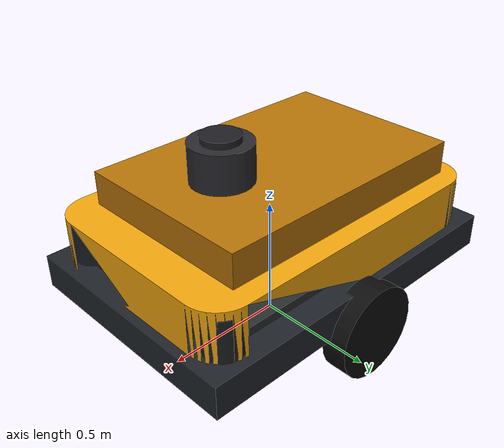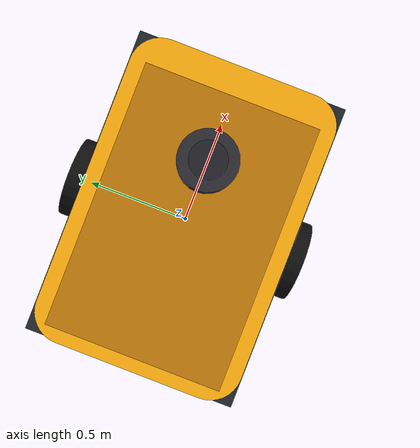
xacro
<?xml version="1.0"?>
<!-- Reduced uniformly by 10% for fleet clearance; collision outline 1.4318181 x 1.125 m. -->
<robot xmlns:xacro="http://www.ros.org/wiki/xacro" name="light_diff_amr">
  <xacro:arg name="robot_name" default="light_1"/>
  <xacro:arg name="controllers_file" default=""/>
  <xacro:include filename="$(find hetero_fleet_description)/urdf/common.xacro"/>
  <xacro:property name="controllers_file" value="$(arg controllers_file)"/>
  <xacro:property name="robot_name" value="$(arg robot_name)"/>
  <xacro:property name="s" value="1.704545454510"/>
  <xacro:property name="base_length" value="${0.80 * s}"/>
  <xacro:property name="base_width" value="${0.54 * s}"/>
  <xacro:property name="base_height" value="${0.22 * s}"/>
  <xacro:property name="wheel_radius" value="${0.11 * s}"/>
  <xacro:property name="wheel_width" value="${0.060 * s}"/>

  <link name="base_footprint"/>
  <link name="base_link">
    <inertial><origin xyz="${-0.06 * s} 0 0"/><mass value="${24.0 * s**3}"/><inertia ixx="${0.58 * s**5}" ixy="0" ixz="0" iyy="${0.92 * s**5}" iyz="0" izz="${1.20 * s**5}"/></inertial>
    <visual><origin xyz="0 0 0"/><geometry><mesh filename="package://hetero_fleet_description/meshes/light_shell.stl" scale="${s} ${s} ${s}"/></geometry><material name="yellow"><color rgba="0.95 0.65 0.05 1"/></material></visual>
    <collision><origin xyz="0 0 ${base_height / 2}"/><geometry><box size="${base_length} ${base_width} ${base_height}"/></geometry></collision>
  </link>
  <joint name="base_footprint_joint" type="fixed"><parent link="base_footprint"/><child link="base_link"/><origin xyz="0 0 ${wheel_radius}"/></joint>
  <link name="underbody_link"><visual><origin xyz="0 0 ${0.055 * s}"/><geometry><box size="${0.72 * s} ${0.46 * s} ${0.11 * s}"/></geometry><material name="underbody"><color rgba="0.16 0.17 0.18 1"/></material></visual><collision><origin xyz="0 0 ${0.055 * s}"/><geometry><box size="${0.72 * s} ${0.46 * s} ${0.11 * s}"/></geometry></collision></link>
  <joint name="underbody_joint" type="fixed"><parent link="base_link"/><child link="underbody_link"/><origin xyz="0 0 ${0.01 * s}"/></joint>
  <link name="bumper_link"><visual><origin xyz="0 0 ${0.04 * s}"/><geometry><box size="${0.84 * s} ${0.58 * s} ${0.08 * s}"/></geometry><material name="bumper"><color rgba="0.12 0.14 0.16 1"/></material></visual><collision><origin xyz="0 0 ${0.04 * s}"/><geometry><box size="${0.84 * s} ${0.58 * s} ${0.08 * s}"/></geometry></collision></link>
  <joint name="bumper_joint" type="fixed"><parent link="base_link"/><child link="bumper_link"/><origin xyz="0 0 ${0.02 * s}"/></joint>
  <link name="top_cover_link"><visual><origin xyz="0 0 ${0.04 * s}"/><geometry><box size="${0.66 * s} ${0.44 * s} ${0.08 * s}"/></geometry><material name="top_cover"><color rgba="0.72 0.45 0.03 1"/></material></visual><collision><origin xyz="0 0 ${0.04 * s}"/><geometry><box size="${0.66 * s} ${0.44 * s} ${0.08 * s}"/></geometry></collision></link>
  <joint name="top_cover_joint" type="fixed"><parent link="base_link"/><child link="top_cover_link"/><origin xyz="${-0.02 * s} 0 ${base_height}"/></joint>

  <link name="front_left_corner_guard"><visual><origin xyz="0 0 ${0.10 * s}"/><geometry><cylinder radius="${0.045 * s}" length="${0.20 * s}"/></geometry><material name="guard"><color rgba="0.10 0.11 0.12 1"/></material></visual><collision><origin xyz="0 0 ${0.10 * s}"/><geometry><cylinder radius="${0.045 * s}" length="${0.20 * s}"/></geometry></collision></link>
  <joint name="front_left_corner_guard_joint" type="fixed"><parent link="base_link"/><child link="front_left_corner_guard"/><origin xyz="${0.34 * s} ${0.22 * s} 0"/></joint>
  <link name="front_right_corner_guard"><visual><origin xyz="0 0 ${0.10 * s}"/><geometry><cylinder radius="${0.045 * s}" length="${0.20 * s}"/></geometry><material name="guard"><color rgba="0.10 0.11 0.12 1"/></material></visual><collision><origin xyz="0 0 ${0.10 * s}"/><geometry><cylinder radius="${0.045 * s}" length="${0.20 * s}"/></geometry></collision></link>
  <joint name="front_right_corner_guard_joint" type="fixed"><parent link="base_link"/><child link="front_right_corner_guard"/><origin xyz="${0.34 * s} ${-0.22 * s} 0"/></joint>
  <link name="rear_left_corner_guard"><visual><origin xyz="0 0 ${0.10 * s}"/><geometry><cylinder radius="${0.045 * s}" length="${0.20 * s}"/></geometry><material name="guard"><color rgba="0.10 0.11 0.12 1"/></material></visual><collision><origin xyz="0 0 ${0.10 * s}"/><geometry><cylinder radius="${0.045 * s}" length="${0.20 * s}"/></geometry></collision></link>
  <joint name="rear_left_corner_guard_joint" type="fixed"><parent link="base_link"/><child link="rear_left_corner_guard"/><origin xyz="${-0.34 * s} ${0.22 * s} 0"/></joint>
  <link name="rear_right_corner_guard"><visual><origin xyz="0 0 ${0.10 * s}"/><geometry><cylinder radius="${0.045 * s}" length="${0.20 * s}"/></geometry><material name="guard"><color rgba="0.10 0.11 0.12 1"/></material></visual><collision><origin xyz="0 0 ${0.10 * s}"/><geometry><cylinder radius="${0.045 * s}" length="${0.20 * s}"/></geometry></collision></link>
  <joint name="rear_right_corner_guard_joint" type="fixed"><parent link="base_link"/><child link="rear_right_corner_guard"/><origin xyz="${-0.34 * s} ${-0.22 * s} 0"/></joint>

  <link name="caster_fork_link"><visual><origin xyz="0 0 ${0.08 * s}"/><geometry><box size="${0.07 * s} ${0.06 * s} ${0.16 * s}"/></geometry><material name="fork"><color rgba="0.18 0.19 0.20 1"/></material></visual><collision><origin xyz="0 0 ${0.08 * s}"/><geometry><box size="${0.07 * s} ${0.06 * s} ${0.16 * s}"/></geometry></collision></link>
  <joint name="caster_fork_joint" type="fixed"><parent link="base_link"/><child link="caster_fork_link"/><origin xyz="${-0.28 * s} 0 ${0.01 * s}"/></joint>

  <xacro:macro name="drive_wheel" params="side y">
    <link name="${side}_wheel_link">
      <inertial><mass value="${0.45 * s**3}"/><inertia ixx="${0.002 * s**5}" ixy="0" ixz="0" iyy="${0.001 * s**5}" iyz="0" izz="${0.002 * s**5}"/></inertial>
      <visual><origin rpy="${pi / 2} 0 0"/><geometry><cylinder radius="${wheel_radius}" length="${wheel_width}"/></geometry><material name="rubber"><color rgba="0.05 0.05 0.05 1"/></material></visual>
      <collision><origin rpy="${pi / 2} 0 0"/><geometry><cylinder radius="${wheel_radius}" length="${wheel_width}"/></geometry></collision>
    </link>
    <!-- Torque scales with mass times length; the body/inertia already use s^3/s^5. -->
    <joint name="${side}_wheel_joint" type="continuous"><parent link="base_link"/><child link="${side}_wheel_link"/><origin xyz="0 ${y} 0"/><axis xyz="0 1 0"/><limit effort="${8 * s**4}" velocity="18"/></joint>
  </xacro:macro>
  <xacro:drive_wheel side="left" y="${base_width / 2 + wheel_width / 2}"/>
  <xacro:drive_wheel side="right" y="${-base_width / 2 - wheel_width / 2}"/>

  <link name="caster_link">
    <visual><geometry><sphere radius="${0.11 * s}"/></geometry><material name="rubber"><color rgba="0.05 0.05 0.05 1"/></material></visual>
    <collision><geometry><sphere radius="${0.11 * s}"/></geometry></collision>
  </link>
  <joint name="caster_joint" type="fixed"><parent link="caster_fork_link"/><child link="caster_link"/><origin xyz="0 0 ${-0.01 * s}"/></joint>

  <link name="lidar_link">
    <inertial><mass value="0.15"/><inertia ixx="0.0002" ixy="0" ixz="0" iyy="0.0002" iyz="0" izz="0.0003"/></inertial>
    <visual><geometry><cylinder radius="${0.045 * s}" length="${0.05 * s}"/></geometry><material name="lidar"><color rgba="0.12 0.12 0.14 1"/></material></visual>
    <collision><geometry><cylinder radius="${0.045 * s}" length="${0.05 * s}"/></geometry></collision>
  </link>
  <link name="lidar_mount_link"><visual><origin xyz="0 0 ${0.05 * s}"/><geometry><cylinder radius="${0.072 * s}" length="${0.10 * s}"/></geometry><material name="mount"><color rgba="0.16 0.16 0.18 1"/></material></visual><collision><origin xyz="0 0 ${0.05 * s}"/><geometry><cylinder radius="${0.065 * s}" length="${0.09 * s}"/></geometry></collision></link>
  <joint name="lidar_mount_joint" type="fixed"><parent link="top_cover_link"/><child link="lidar_mount_link"/><origin xyz="${0.16 * s} 0 ${0.07 * s}"/></joint>
  <joint name="lidar_joint" type="fixed"><parent link="lidar_mount_link"/><child link="lidar_link"/><origin xyz="0 0 ${0.09 * s}"/></joint>

  <!-- The lidar ends up ~0.26 m above the floor, inside the map's obstacle band
       that maps/geomap.pgm calls obstacles, so what the scan sees and what the
       map marks as occupied agree. -->
  <gazebo reference="lidar_link">
    <sensor name="${robot_name}_lidar" type="gpu_lidar">
      <always_on>1</always_on><visualize>false</visualize><update_rate>15</update_rate><topic>/${robot_name}/scan</topic>
      <frame_id>lidar_link</frame_id>
      <lidar><scan><horizontal><samples>720</samples><resolution>1</resolution><min_angle>-3.14159</min_angle><max_angle>3.14159</max_angle></horizontal></scan><range><min>0.12</min><max>12.0</max><resolution>0.01</resolution></range></lidar>
    </sensor>
  </gazebo>
  <xacro:fleet_gazebo_material link="base_link" rgba="0.95 0.65 0.05 1"/>
  <xacro:fleet_gazebo_wheel_dynamics link="left_wheel_link" mu1="1.5" mu2="1.5" kp="10000" kd="100.0" fdir1="1 0 0"/>
  <xacro:fleet_gazebo_wheel_dynamics link="right_wheel_link" mu1="1.5" mu2="1.5" kp="10000" kd="100.0" fdir1="1 0 0"/>
  <xacro:fleet_gazebo_wheel_dynamics link="caster_link" mu1="0.0" mu2="0.0" kp="10000" kd="100.0"/>
  <xacro:fleet_ros2_control name="${robot_name}" wheel_joints="${['left_wheel_joint', 'right_wheel_joint']}" controller_type="diff" controllers_file="${controllers_file}" namespace="${robot_name}"/>
</robot>
